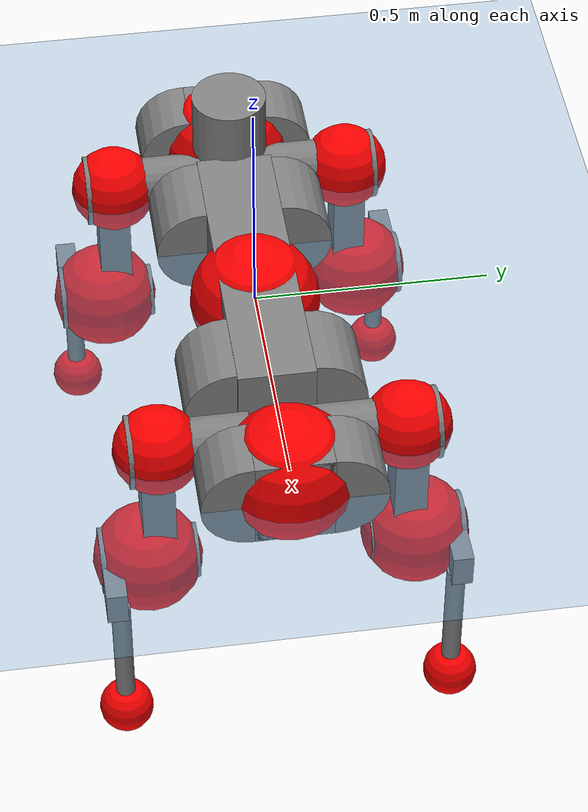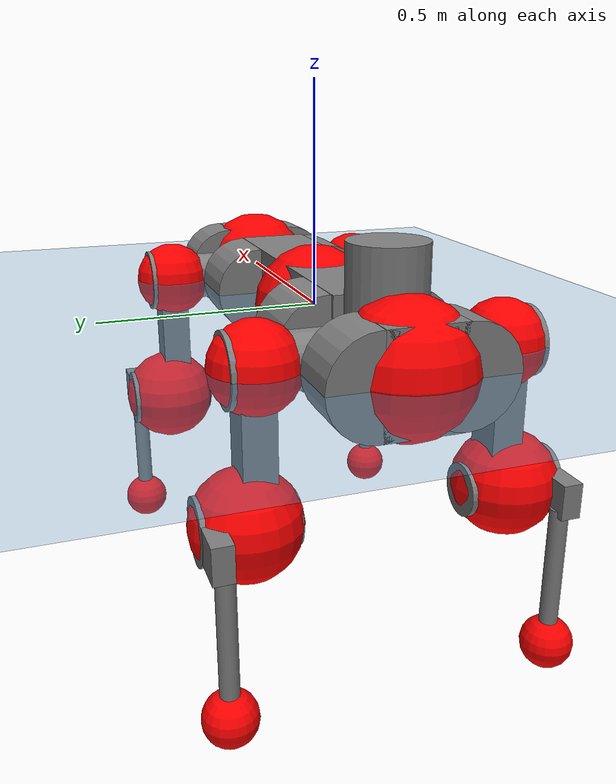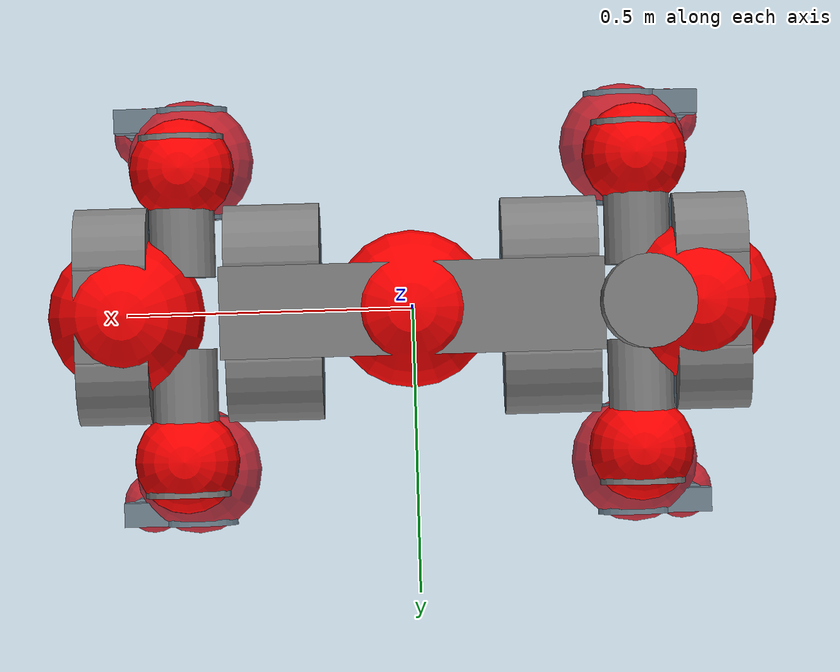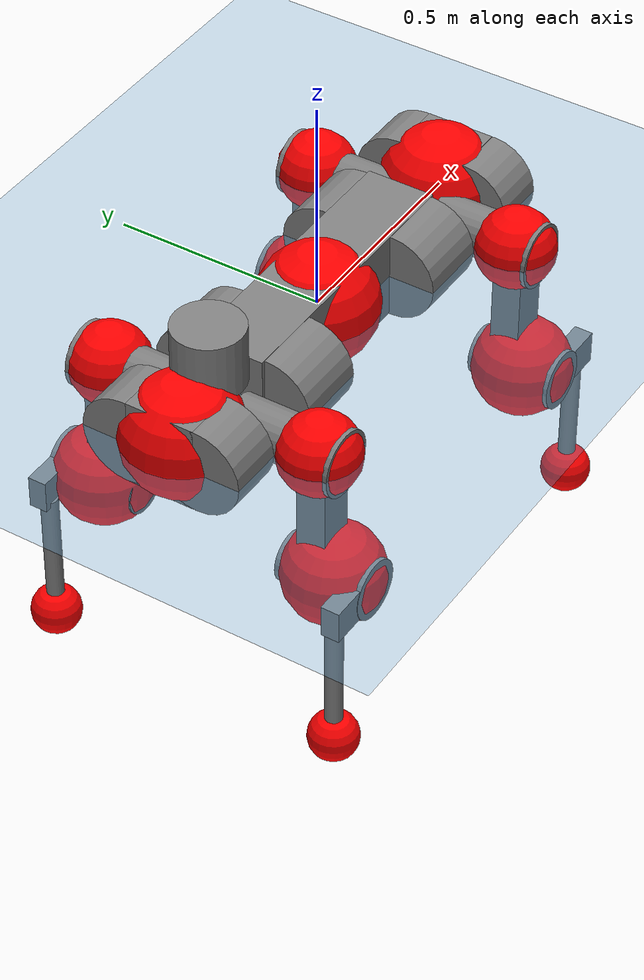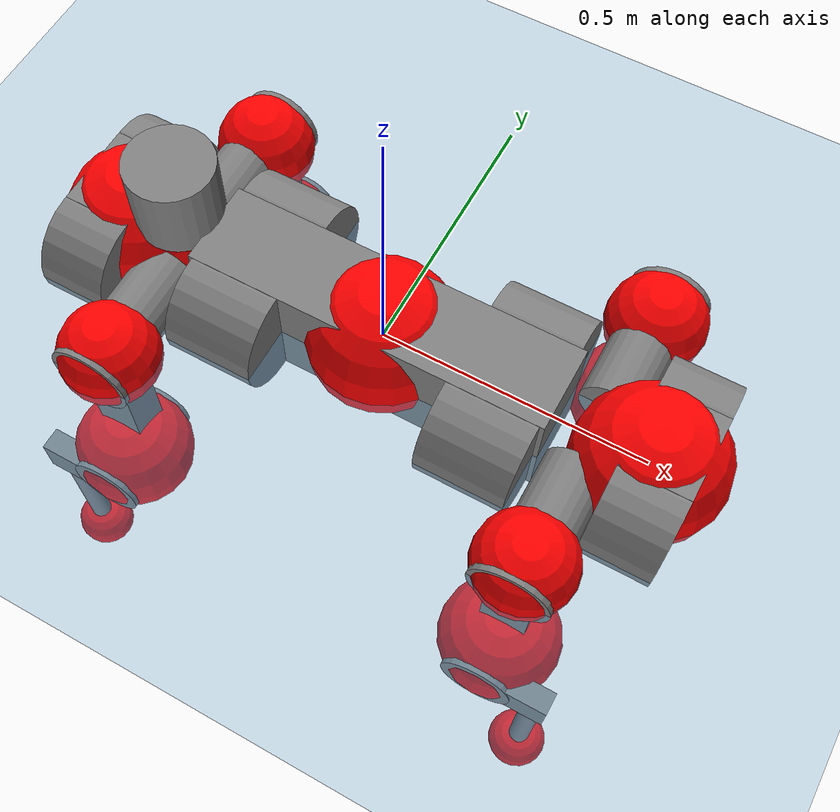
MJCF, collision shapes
<mujoco model="anymal_c">
  <compiler angle="radian" assetdir="assets" balanceinertia="true" inertiafromgeom="false"/>

  <option timestep="0.005" density="1.2" viscosity="2e-05"/>

  <size nkey="1"/>

  <visual>
    <quality shadowsize="8192"/>
    <map shadowclip="0.5"/>
  </visual>

  <default>
    <default class="/">
      <material specular="0" shininess="0.25"/>
      <geom contype="0" conaffinity="0" group="1" solref="-1000 -80"/>
      <site size="0.01 0.005 0.005" group="5"/>
      <general forcelimited="true" forcerange="-80 80" biastype="affine" gainprm="80" biasprm="0 -80 -2"/>
      <default class="anymal_c">
        <joint armature="0.01" damping="0.01" frictionloss="0.1"/>
        <default class="visual">
          <geom type="mesh" group="2"/>
          <default class="visual_zflip"/>
        </default>
        <default class="collision">
          <geom type="cylinder" group="3"/>
          <default class="foot">
            <geom size="0.03 0 0" type="sphere" condim="6" priority="1" friction="0.8 0.02 0.01" solimp="0.015 1 0.03"/>
          </default>
        </default>
      </default>
      <default class="reward_collision_sphere">
        <geom group="5" rgba="1 0 0 1"/>
      </default>
    </default>
  </default>

  <asset>
    <texture type="skybox" colorspace="auto" name="//unnamed_texture_0" builtin="gradient" rgb1="0.95 0.95 0.95" rgb2="0.95 0.95 0.95" width="100" height="600"/>
    <texture type="2d" colorspace="auto" name="texplane" builtin="checker" rgb1="0.345 0.575 0.748" rgb2="0.345 0.575 0.748" markrgb="1 1 1" width="512" height="512"/>
    <texture type="2d" colorspace="linear" name="base" file="base.png"/>
    <texture type="2d" colorspace="linear" name="top_shell" file="top_shell.png"/>
    <texture type="2d" colorspace="linear" name="bottom_shell" file="bottom_shell.png"/>
    <texture type="2d" colorspace="linear" name="remote" file="remote.png"/>
    <texture type="2d" colorspace="linear" name="hatch" file="hatch.png"/>
    <texture type="2d" colorspace="linear" name="handle" file="handle.png"/>
    <texture type="2d" colorspace="linear" name="face" file="face.png"/>
    <texture type="2d" colorspace="linear" name="battery" file="battery.png"/>
    <texture type="2d" colorspace="linear" name="lidar_cage" file="lidar_cage.png"/>
    <texture type="2d" colorspace="linear" name="depth_camera" file="depth_camera.png"/>
    <texture type="2d" colorspace="linear" name="wide_angle_camera" file="wide_angle_camera.png"/>
    <texture type="2d" colorspace="linear" name="lidar" file="lidar.png"/>
    <texture type="2d" colorspace="linear" name="drive" file="drive.png"/>
    <texture type="2d" colorspace="linear" name="hip_l" file="hip_l.png"/>
    <texture type="2d" colorspace="linear" name="shank_l" file="shank_l.png"/>
    <texture type="2d" colorspace="linear" name="foot" file="foot.png"/>
    <texture type="2d" colorspace="linear" name="thigh" file="thigh.png"/>
    <texture type="2d" colorspace="linear" name="shank_r" file="shank_r.png"/>
    <texture type="2d" colorspace="linear" name="hip_r" file="hip_r.png"/>
    <material name="MatPlane" class="/" texture="texplane" texuniform="true" texrepeat="2 2" specular="0.9" shininess="0.5"/>
    <material name="black_plastic" class="/" rgba="0.007 0.007 0.007 1"/>
    <material name="green" class="/" rgba="0.052 0.178 0.033 1"/>
    <material name="red" class="/" rgba="0.178 0.006 0.005 1"/>
    <material name="yellow" class="/" rgba="0.178 0.119 0.006 1"/>
    <material name="lwl" class="/" rgba="0.8 0.8 0.8 1"/>
    <material name="base" class="/" texture="base"/>
    <material name="top_shell" class="/" texture="top_shell"/>
    <material name="bottom_shell" class="/" texture="bottom_shell"/>
    <material name="hip_l" class="/" texture="hip_l"/>
    <material name="thigh" class="/" texture="thigh"/>
    <material name="shank_l" class="/" texture="shank_l"/>
    <material name="foot" class="/" texture="foot"/>
    <material name="hip_r" class="/" texture="hip_r"/>
    <material name="shank" class="/" texture="shank_r"/>
    <material name="hatch" class="/" texture="hatch"/>
    <material name="remote" class="/" texture="remote"/>
    <material name="handle" class="/" texture="handle"/>
    <material name="face" class="/" texture="face"/>
    <material name="depth_camera" class="/" texture="depth_camera"/>
    <material name="wide_angle_camera" class="/" texture="wide_angle_camera"/>
    <material name="battery" class="/" texture="battery"/>
    <material name="lidar_cage" class="/" texture="lidar_cage"/>
    <material name="lidar" class="/" texture="lidar"/>
    <material name="drive" class="/" texture="drive"/>
    <mesh name="base_0" class="/" file="base_0.obj"/>
    <mesh name="base_1" class="/" file="base_1.obj"/>
    <mesh name="base_2" class="/" file="base_2.obj"/>
    <mesh name="base_3" class="/" file="base_3.obj"/>
    <mesh name="base_4" class="/" file="base_4.obj"/>
    <mesh name="base_5" class="/" file="base_5.obj"/>
    <mesh name="top_shell" class="/" file="top_shell.obj"/>
    <mesh name="bottom_shell" class="/" file="bottom_shell.obj"/>
    <mesh name="remote" class="/" file="remote.obj"/>
    <mesh name="handle" class="/" file="handle.obj"/>
    <mesh name="face" class="/" file="face.obj"/>
    <mesh name="wide_angle_camera" class="/" file="wide_angle_camera.obj"/>
    <mesh name="depth_camera" class="/" file="depth_camera.obj"/>
    <mesh name="battery" class="/" file="battery.obj"/>
    <mesh name="lidar_cage" class="/" file="lidar_cage.obj"/>
    <mesh name="lidar" class="/" file="lidar.obj"/>
    <mesh name="drive" class="/" file="drive.obj"/>
    <mesh name="hip_l" class="/" file="hip_l.obj"/>
    <mesh name="thigh" class="/" file="thigh.obj"/>
    <mesh name="shank_l" class="/" file="shank_l.obj"/>
    <mesh name="foot" class="/" file="foot.obj"/>
    <mesh name="hip_r" class="/" file="hip_r.obj"/>
    <mesh name="hatch" class="/" file="hatch.obj"/>
    <mesh name="shank_r" class="/" file="shank_r.obj"/>
  </asset>

  <worldbody>
    <geom name="floor" class="/" size="100 100 0.125" type="plane" group="0" material="MatPlane"/>
    <light name="toplight_shadow" class="/" pos="0 0 5" dir="0.0990148 0.0990148 -0.990148" type="directional" ambient="0.04 0.04 0.04" diffuse="0.55 0.55 0.55" specular="0.12 0.12 0.12"/>
    <light name="toplight_fill" class="/" pos="0 0 5" dir="0.0990148 0.0990148 -0.990148" type="directional" castshadow="false" ambient="0.04 0.04 0.04" diffuse="0.3 0.3 0.3" specular="0.08 0.08 0.08"/>
    <body name="trunk" childclass="anymal_c" pos="0.000468863 6.55231e-05 0.000632384" quat="1 1.17521e-05 8.30463e-07 -5.67231e-06">
      <inertial pos="0.00507137 0.000667156 0.0524449" quat="0.488908 0.515195 0.50084 0.494675" mass="29.5986" diaginertia="1.08508 1.6708 0.378401"/>
      <joint name="//unnamed_joint_0" type="free" armature="0" damping="0" frictionloss="0"/>
      <geom name="//unnamed_geom_1" class="visual" material="green" mesh="base_0"/>
      <geom name="//unnamed_geom_2" class="visual" material="yellow" mesh="base_1"/>
      <geom name="//unnamed_geom_3" class="visual" material="red" mesh="base_2"/>
      <geom name="//unnamed_geom_4" class="visual" material="black_plastic" mesh="base_3"/>
      <geom name="//unnamed_geom_5" class="visual" material="lwl" mesh="base_4"/>
      <geom name="//unnamed_geom_6" class="visual" material="base" mesh="base_5"/>
      <geom name="trunk_1" class="collision" size="0.335112 0.0808892 0.104" type="box"/>
      <geom name="trunk_2" class="collision" size="0.104 0.0837781" pos="0.242706 0.0864056 0" quat="0.707107 0 0.707107 0"/>
      <geom name="trunk_3" class="collision" size="0.104 0.0837781" pos="-0.242706 0.0864056 0" quat="0.707107 0 0.707107 0"/>
      <geom name="trunk_4" class="collision" size="0.104 0.0837781" pos="0.242706 -0.0864056 0" quat="0.707107 0 0.707107 0"/>
      <geom name="trunk_5" class="collision" size="0.104 0.0837781" pos="-0.242706 -0.0864056 0" quat="0.707107 0 0.707107 0"/>
      <geom name="//unnamed_geom_12" class="visual" material="top_shell" mesh="top_shell"/>
      <geom name="//unnamed_geom_13" class="visual" material="bottom_shell" mesh="bottom_shell"/>
      <geom name="//unnamed_geom_14" class="visual" material="remote" mesh="remote"/>
      <geom name="//unnamed_geom_15" class="visual" material="handle" mesh="handle"/>
      <geom name="//unnamed_geom_16" class="visual" pos="0.462537 0 0" quat="1 0 0 0" material="face" mesh="face"/>
      <geom name="trunk_6" class="collision" size="0.0635558 0.0808892 0.104" pos="0.523911 0 0" type="box"/>
      <geom name="//unnamed_geom_18" class="collision" size="0.104 0.0635558" pos="0.523911 0.0864056 0" quat="0.707107 0 0.707107 0"/>
      <geom name="//unnamed_geom_19" class="collision" size="0.104 0.0635558" pos="0.523911 -0.0864056 0" quat="0.707107 0 0.707107 0"/>
      <geom name="//unnamed_geom_20" class="visual" pos="0.515152 0 -0.0326035" quat="0.965926 0 0.258819 0" material="depth_camera" mesh="depth_camera"/>
      <geom name="//unnamed_geom_21" class="visual" pos="0.572453 0 0.0167128" material="wide_angle_camera" mesh="wide_angle_camera"/>
      <geom name="//unnamed_geom_22" class="visual_zflip" pos="-0.462537 0 0" quat="0 0 0 1" material="face" mesh="face"/>
      <geom name="trunk_7" class="collision" size="0.0635558 0.0808892 0.104" pos="-0.523911 0 0" quat="0 0 0 1" type="box"/>
      <geom name="//unnamed_geom_24" class="collision" size="0.104 0.0635558" pos="-0.523911 -0.0864056 0" quat="0 -0.707107 0 0.707107"/>
      <geom name="//unnamed_geom_25" class="collision" size="0.104 0.0635558" pos="-0.523911 0.0864056 0" quat="0 -0.707107 0 0.707107"/>
      <geom name="//unnamed_geom_26" class="visual" pos="-0.515152 0 -0.0326035" quat="0 -0.258819 0 0.965926" material="depth_camera" mesh="depth_camera"/>
      <geom name="//unnamed_geom_27" class="visual_zflip" pos="-0.572453 0 0.0167128" quat="0 0 0 1" material="wide_angle_camera" mesh="wide_angle_camera"/>
      <geom name="//unnamed_geom_28" class="visual" material="battery" mesh="battery"/>
      <geom name="//unnamed_geom_29" class="visual" pos="0 0.0959343 0.032428" quat="0.683013 -0.183013 0.183013 0.683013" material="depth_camera" mesh="depth_camera"/>
      <geom name="//unnamed_geom_30" class="visual" pos="0 -0.0959343 0.032428" quat="0.683013 0.183013 0.183013 -0.683013" material="depth_camera" mesh="depth_camera"/>
      <geom name="//unnamed_geom_31" class="visual" pos="-0.406185 0 0.0820569" quat="1 0 0 0" material="lidar_cage" mesh="lidar_cage"/>
      <geom name="trunk_8" class="collision" size="0.0808892 0.0693336" pos="-0.406185 0 0.149042"/>
      <geom name="//unnamed_geom_33" class="visual" pos="-0.406185 4.65452e-05 0.158755" quat="0.707107 0 0 -0.707107" material="lidar" mesh="lidar"/>
      <geom name="//unnamed_geom_34" class="visual" pos="0.334656 0.128332 2.03457e-09" quat="0.258819 0.965926 0 0" material="drive" mesh="drive"/>
      <geom name="//unnamed_geom_35" class="visual" pos="0.334656 -0.128332 -2.03457e-09" quat="0.258819 -0.965926 0 0" material="drive" mesh="drive"/>
      <geom name="//unnamed_geom_36" class="visual" pos="-0.334656 0.128332 -2.03457e-09" quat="0 0 0.965926 -0.258819" material="drive" mesh="drive"/>
      <geom name="//unnamed_geom_37" class="visual" pos="-0.334656 -0.128332 2.03457e-09" quat="0 0 -0.965926 -0.258819" material="drive" mesh="drive"/>
      <geom name="//unnamed_geom_38" class="visual" pos="0.129443 0 0.0814987" quat="1 0 0 0" material="hatch" mesh="hatch"/>
      <geom name="//unnamed_geom_39" class="reward_collision_sphere" size="0.138667"/>
      <geom name="//unnamed_geom_40" class="reward_collision_sphere" size="0.138667" pos="0.502151 0 0"/>
      <geom name="//unnamed_geom_41" class="reward_collision_sphere" size="0.138667" pos="-0.502151 0 0"/>
      <site name="imu" pos="0.278545 0.0188557 0.0519352" size="0.0115556"/>
      <camera name="track" pos="0 -2.46873 0" quat="0.707107 0.707107 0 0" mode="trackcom"/>
      <camera name="ego_camera" pos="0.502151 0 -0.0446568" quat="-0.5 -0.5 0.5 0.5"/>
      <body name="LF_HIP" pos="0.335893 0.124827 -0.0017133" quat="0.258908 0.965902 -8.24364e-05 0.00011771">
        <inertial pos="0.0618087 -0.0188424 -0.0070194" quat="-0.129217 0.706576 -0.135043 0.682507" mass="4.33029" diaginertia="0.0101489 0.0144396 0.00563256"/>
        <joint name="LF_HAA" pos="0 0 0" axis="0.999997 -0.000220212 -0.0022507" range="-0.796528 0.52839" armature="0.0116175" damping="0.00845863" frictionloss="0.12094"/>
        <geom name="//unnamed_geom_42" class="visual" pos="0 0.000119685 -1.96581e-05" quat="0.258819 -0.965926 0 0" material="hip_l" mesh="hip_l"/>
        <geom name="//unnamed_geom_43" class="visual" pos="0.0668419 -0.0825112 -0.0467655" quat="0.183013 -0.683013 0.683013 0.183013" material="drive" mesh="drive"/>
        <geom name="//unnamed_geom_44" class="collision" size="0.057778 0.0808892" pos="0.0668419 -0.0147628 -0.00770888" quat="-0.353553 -0.612372 0.612372 -0.353553"/>
        <body name="LF_THIGH" pos="0.0668825 -0.0932144 -0.0486582" quat="0.18326 -0.683005 0.682931 0.183097">
          <inertial pos="0.0350431 0.00152905 -0.27265" quat="0.993738 -0.00611611 -0.0752401 0.0823771" mass="4.73814" diaginertia="0.0526371 0.0857774 0.00698995"/>
          <joint name="LF_HFE" pos="0 0 0" axis="0.999999 -0.0015144 2.79934e-05" stiffness="0.00980033" range="-3.09927 3.09706" armature="0.0112461" damping="0.0235297" frictionloss="0.130629"/>
          <geom name="//unnamed_geom_45" class="visual" pos="-0.00235717 -3.71434e-06 0" quat="0.707107 0 0 -0.707107" material="thigh" mesh="thigh"/>
          <geom name="//unnamed_geom_46" class="collision" size="0.0751114 0.0462224" pos="0.0446357 0 0" quat="0.5 0.5 -0.5 -0.5"/>
          <geom name="//unnamed_geom_47" class="collision" size="0.0433335 0.0346668 0.163297" pos="0.0334768 0 -0.157766" quat="0.707107 0 0 -0.707107" type="box"/>
          <geom name="//unnamed_geom_48" class="visual" pos="0.111924 0 -0.31818" quat="1 0 0 0" material="drive" mesh="drive"/>
          <geom name="//unnamed_geom_49" class="collision" size="0.057778 0.0808892" pos="0.0338115 0 -0.31818" quat="0.707107 0 0.707107 0"/>
          <geom name="//unnamed_geom_50" class="reward_collision_sphere" size="0.0924448" pos="0.0278973 0 0"/>
          <body name="LF_SHANK" pos="0.10906 0.00201954 -0.320991" quat="1 0.000534102 0.000643112 0.000521106">
            <inertial pos="0.00722521 -0.075844 -0.0869066" quat="0.993079 -0.114629 0.000473762 -0.0255889" mass="0.887286" diaginertia="0.0174402 0.0254634 0.00199435"/>
            <joint name="LF_KFE" pos="0 0 0" axis="0.999997 -0.00199644 -0.00153508" range="-3.08058 3.12241" armature="0.0108697" damping="0.00768362" frictionloss="0.11395"/>
            <geom name="//unnamed_geom_51" class="visual" pos="-0.00076862 -0.00409832 0" quat="0.707107 0 0 -0.707107" material="shank_l" mesh="shank_l"/>
            <geom name="LF_kfe_act" class="collision" size="0.0693336 0.0231112" pos="0.0223178 0 0" quat="0.5 0.5 -0.5 -0.5"/>
            <geom name="//unnamed_geom_53" class="collision" size="0.0664435 0.0390001 0.0219556" pos="0.0223178 -0.0709748 0" quat="0.5 0.5 -0.5 -0.5" type="box"/>
            <geom name="//unnamed_geom_54" class="visual" pos="0.0145626 -0.109883 -0.377317" quat="0.382683 0 0 -0.92388" material="foot" mesh="foot"/>
            <geom name="LF_calf" class="collision" size="0.0202223 0.163225" pos="0.0145624 -0.108562 -0.188658" quat="0.707107 0 0 -0.707107"/>
            <geom name="LF_foot" class="foot" size="0.0306792" pos="0.0145624 -0.108562 -0.352197" quat="0.707107 0 0 -0.707107"/>
            <geom name="//unnamed_geom_57" class="reward_collision_sphere" size="0.115556" pos="-0.0557946 0 0"/>
            <geom name="//unnamed_geom_58" class="reward_collision_sphere" size="0.057778" pos="0.0145624 -0.108562 -0.352197"/>
            <site name="LF_foot" class="foot" pos="0.0145624 -0.108562 -0.352197" quat="0.707107 0 0 -0.707107" size="0.0115556"/>
          </body>
        </body>
      </body>
      <body name="RF_HIP" pos="0.334532 -0.129617 -0.00269524" quat="0.259073 -0.965858 -0.000242 0.000142869">
        <inertial pos="0.0607514 0.0217474 -0.00683816" quat="0.135341 0.679008 0.128051 0.710095" mass="4.3837" diaginertia="0.00985872 0.0148738 0.00571547"/>
        <joint name="RF_HAA" pos="0 0 0" axis="0.999982 0.00589713 0.00132468" range="-0.490654 0.734999" armature="0.013044" damping="0.0249991" frictionloss="0.130718"/>
        <geom name="//unnamed_geom_59" class="visual" pos="0 -0.000119684 -1.9658e-05" quat="0.258819 0.965926 0 0" material="hip_r" mesh="hip_r"/>
        <geom name="//unnamed_geom_60" class="visual" pos="0.0668419 0.0825112 -0.0467655" quat="0.183013 0.683013 0.683013 -0.183013" material="drive" mesh="drive"/>
        <geom name="//unnamed_geom_61" class="collision" size="0.057778 0.0808892" pos="0.0668419 0.0147628 -0.00770888" quat="-0.353553 0.612372 0.612372 0.353553"/>
        <body name="RF_THIGH" pos="0.064803 0.0856996 -0.0448375" quat="0.182787 0.682733 0.683668 -0.181829">
          <inertial pos="0.0323138 0.00345722 -0.273969" quat="0.991888 -0.00562989 -0.0866185 0.0928595" mass="4.73201" diaginertia="0.0521671 0.0850032 0.00696384"/>
          <joint name="RF_HFE" pos="0 0 0" axis="1 0.000582904 0.00057445" range="-3.0945 3.14381" armature="0.012109" damping="0.025034" frictionloss="0.116536"/>
          <geom name="//unnamed_geom_62" class="visual" pos="-0.00235717 -3.71434e-06 0" quat="0.707107 0 0 -0.707107" material="thigh" mesh="thigh"/>
          <geom name="//unnamed_geom_63" class="collision" size="0.0751114 0.0462224" pos="0.0446357 0 0" quat="0.5 0.5 0.5 0.5"/>
          <geom name="//unnamed_geom_64" class="collision" size="0.0433335 0.0346668 0.163297" pos="0.0334768 0 -0.157766" quat="0.707107 0 0 0.707107" type="box"/>
          <geom name="//unnamed_geom_65" class="visual" pos="0.111924 0 -0.31818" quat="1 0 0 0" material="drive" mesh="drive"/>
          <geom name="//unnamed_geom_66" class="collision" size="0.057778 0.0808892" pos="0.0338115 0 -0.31818" quat="0.707107 0 0.707107 0"/>
          <geom name="//unnamed_geom_67" class="reward_collision_sphere" size="0.0924448" pos="0.0278973 0 0"/>
          <body name="RF_SHANK" pos="0.114062 0.00183261 -0.319489" quat="1 0.000331165 0.000242192 0.000359203">
            <inertial pos="0.00885769 0.0754577 -0.0891704" quat="0.993472 0.111512 0.00394318 0.0237457" mass="0.911473" diaginertia="0.0180446 0.0263955 0.00199894"/>
            <joint name="RF_KFE" pos="0 0 0" axis="0.999894 0.00825946 -0.0119648" range="-3.08908 3.12175" armature="0.0103704" damping="0" frictionloss="0.121351"/>
            <geom name="//unnamed_geom_68" class="visual" pos="-0.000768616 0.00409832 0" quat="0.707107 0 0 0.707107" material="shank" mesh="shank_r"/>
            <geom name="RF_kfe_act" class="collision" size="0.0693336 0.0231112" pos="0.0223178 0 0" quat="0.5 0.5 0.5 0.5"/>
            <geom name="//unnamed_geom_70" class="collision" size="0.0664435 0.0390001 0.0219556" pos="0.0223178 0.0709748 0" quat="0.5 0.5 0.5 0.5" type="box"/>
            <geom name="//unnamed_geom_71" class="visual" pos="0.0145622 0.109883 -0.377317" quat="0.382683 0 0 0.92388" material="foot" mesh="foot"/>
            <geom name="RF_calf" class="collision" size="0.0202223 0.163225" pos="0.0145624 0.108562 -0.188658" quat="0.707107 0 0 0.707107"/>
            <geom name="RF_foot" class="foot" size="0.0279717" pos="0.0145624 0.108562 -0.352197" quat="0.707107 0 0 0.707107"/>
            <geom name="//unnamed_geom_74" class="reward_collision_sphere" size="0.115556" pos="-0.0557946 0 0"/>
            <geom name="//unnamed_geom_75" class="reward_collision_sphere" size="0.057778" pos="0.0145624 0.108562 -0.352197"/>
            <site name="RF_foot" class="foot" pos="0.0145624 0.108562 -0.352197" quat="0.707107 0 0 0.707107" size="0.0115556"/>
          </body>
        </body>
      </body>
      <body name="LH_HIP" pos="-0.331848 0.128405 0.00430763" quat="-0.000746389 0.000148267 0.966268 -0.257538">
        <inertial pos="0.0625239 0.0194304 -0.00744548" quat="0.122809 0.682862 0.128284 0.708633" mass="4.56585" diaginertia="0.0104451 0.0145006 0.00593095"/>
        <joint name="LH_HAA" pos="0 0 0" axis="0.999946 -0.00596018 0.00855371" range="-0.449959 0.672817" armature="0.011788" damping="0.00848764" frictionloss="0.127936"/>
        <geom name="//unnamed_geom_76" class="visual" pos="0 -0.000119684 -1.9658e-05" quat="-0.258819 -0.965926 0 0" material="hip_r" mesh="hip_r"/>
        <geom name="//unnamed_geom_77" class="visual" pos="0.0668419 0.0825112 -0.0467655" quat="0.183013 0.683013 0.683013 -0.183013" material="drive" mesh="drive"/>
        <geom name="//unnamed_geom_78" class="collision" size="0.057778 0.0808892" pos="0.0668419 0.0147628 -0.00770888" quat="-0.353553 0.612372 0.612372 0.353553"/>
        <body name="LH_THIGH" pos="0.0652652 0.0899574 -0.0437291" quat="0.181714 0.682916 0.683562 -0.182616">
          <inertial pos="0.0336947 -0.00121485 -0.271709" quat="0.992194 -0.000221053 -0.0870968 0.0892476" mass="4.66266" diaginertia="0.0522989 0.0911295 0.00742938"/>
          <joint name="LH_HFE" pos="0 0 0" axis="1 -0.000719369 -0.000465823" range="-3.13934 3.16693" armature="0.0101891" damping="0.0115319" frictionloss="0.111316"/>
          <geom name="//unnamed_geom_79" class="visual" pos="-0.00235717 -3.71434e-06 0" quat="0.707107 0 0 -0.707107" material="thigh" mesh="thigh"/>
          <geom name="//unnamed_geom_80" class="collision" size="0.0751114 0.0462224" pos="0.0446357 0 0" quat="0.5 0.5 -0.5 -0.5"/>
          <geom name="//unnamed_geom_81" class="collision" size="0.0433335 0.0346668 0.163297" pos="0.0334768 0 -0.157766" quat="0.707107 0 0 -0.707107" type="box"/>
          <geom name="//unnamed_geom_82" class="visual" pos="0.111924 0 -0.31818" quat="1 0 0 0" material="drive" mesh="drive"/>
          <geom name="//unnamed_geom_83" class="collision" size="0.057778 0.0808892" pos="0.0338115 0 -0.31818" quat="0.707107 0 0.707107 0"/>
          <geom name="//unnamed_geom_84" class="reward_collision_sphere" size="0.0924448" pos="0.0278973 0 0"/>
          <body name="LH_SHANK" pos="0.110666 0.00386249 -0.315079" quat="0.999999 0.000178708 0.00077391 0.00116554">
            <inertial pos="0.00551541 0.0757415 -0.0917563" quat="0.992845 0.11658 -0.000734084 0.0258386" mass="0.940677" diaginertia="0.0176333 0.0269923 0.00198665"/>
            <joint name="LH_KFE" pos="0 0 0" axis="0.999991 -0.000937615 -0.00425381" range="-3.20553 3.13832" armature="0.0110591" damping="0" frictionloss="0.120747"/>
            <geom name="//unnamed_geom_85" class="visual" pos="-0.000768616 0.00409832 0" quat="-0.707107 0 0 -0.707107" material="shank" mesh="shank_r"/>
            <geom name="LH_kfe_act" class="collision" size="0.0693336 0.0231112" pos="0.0223178 0 0" quat="0.5 0.5 -0.5 -0.5"/>
            <geom name="//unnamed_geom_87" class="collision" size="0.0664435 0.0390001 0.0219556" pos="0.0223178 0.0709748 0" quat="0.5 0.5 -0.5 -0.5" type="box"/>
            <geom name="//unnamed_geom_88" class="visual" pos="0.0145622 0.109883 -0.377317" quat="-0.382683 0 0 -0.92388" material="foot" mesh="foot"/>
            <geom name="LH_calf" class="collision" size="0.0202223 0.163225" pos="0.0145624 0.108562 -0.188658" quat="0.707107 0 0 -0.707107"/>
            <geom name="LH_foot" class="foot" size="0.0386782" pos="0.0145624 0.108562 -0.352197" quat="0.707107 0 0 -0.707107"/>
            <geom name="//unnamed_geom_91" class="reward_collision_sphere" size="0.115556" pos="-0.0557946 0 0"/>
            <geom name="//unnamed_geom_92" class="reward_collision_sphere" size="0.057778" pos="0.0145624 0.108562 -0.352197"/>
            <site name="LH_foot" class="foot" pos="0.0145624 0.108562 -0.352197" quat="0.707107 0 0 -0.707107" size="0.0115556"/>
          </body>
        </body>
      </body>
      <body name="RH_HIP" pos="-0.331994 -0.131677 -0.00154382" quat="-0.000307924 0.000192448 -0.965927 -0.258813">
        <inertial pos="0.065778 -0.0198622 -0.0103972" quat="-0.122579 0.703817 -0.130536 0.687442" mass="4.36056" diaginertia="0.0103651 0.0148547 0.00567603"/>
        <joint name="RH_HAA" pos="0 0 0" axis="0.999975 0.00486085 0.0051999" stiffness="0.00848422" range="-0.752779 0.530777" armature="0.0113612" damping="0.00284588" frictionloss="0.121089"/>
        <geom name="//unnamed_geom_93" class="visual" pos="0 0.000119685 -1.96581e-05" quat="-0.258819 0.965926 0 0" material="hip_l" mesh="hip_l"/>
        <geom name="//unnamed_geom_94" class="visual" pos="0.0668419 -0.0825112 -0.0467655" quat="-0.183013 0.683013 -0.683013 -0.183013" material="drive" mesh="drive"/>
        <geom name="//unnamed_geom_95" class="collision" size="0.057778 0.0808892" pos="0.0668419 -0.0147628 -0.00770888" quat="0.353553 0.612372 -0.612372 0.353553"/>
        <body name="RH_THIGH" pos="0.065999 -0.0892816 -0.045934" quat="-0.182842 0.683676 -0.682369 -0.183108">
          <inertial pos="0.0348617 0.00187854 -0.272724" quat="0.992071 -0.011742 -0.0833462 0.0933262" mass="4.62991" diaginertia="0.0516991 0.0834247 0.0071342"/>
          <joint name="RH_HFE" pos="0 0 0" axis="0.999954 -0.00275788 0.00915237" range="-3.09941 3.17736" armature="0.0116803" damping="0.00600251" frictionloss="0.127076"/>
          <geom name="//unnamed_geom_96" class="visual" pos="-0.00235717 -3.71434e-06 0" quat="0.707107 0 0 -0.707107" material="thigh" mesh="thigh"/>
          <geom name="//unnamed_geom_97" class="collision" size="0.0751114 0.0462224" pos="0.0446357 0 0" quat="0.5 0.5 0.5 0.5"/>
          <geom name="//unnamed_geom_98" class="collision" size="0.0433335 0.0346668 0.163297" pos="0.0334768 0 -0.157766" quat="0.707107 0 0 0.707107" type="box"/>
          <geom name="//unnamed_geom_99" class="visual" pos="0.111924 0 -0.31818" quat="1 0 0 0" material="drive" mesh="drive"/>
          <geom name="//unnamed_geom_100" class="collision" size="0.057778 0.0808892" pos="0.0338115 0 -0.31818" quat="0.707107 0 0.707107 0"/>
          <geom name="//unnamed_geom_101" class="reward_collision_sphere" size="0.0924448" pos="0.0278973 0 0"/>
          <body name="RH_SHANK" pos="0.116603 0.00330728 -0.315263" quat="0.999999 0.000457192 0.000158006 -0.00111677">
            <inertial pos="0.00224472 -0.0752412 -0.0926981" quat="0.99362 -0.108927 0.00951262 -0.0276338" mass="0.896632" diaginertia="0.016977 0.0253196 0.0019724"/>
            <joint name="RH_KFE" pos="0 0 0" axis="0.999945 -0.000306896 0.0104955" range="-3.12115 3.09508" armature="0.0126274" damping="0.00975168" frictionloss="0.110453"/>
            <geom name="//unnamed_geom_102" class="visual" pos="-0.00076862 -0.00409832 0" quat="0.707107 0 0 -0.707107" material="shank_l" mesh="shank_l"/>
            <geom name="RH_kfe_act" class="collision" size="0.0693336 0.0231112" pos="0.0223178 0 0" quat="0.5 0.5 0.5 0.5"/>
            <geom name="//unnamed_geom_104" class="collision" size="0.0664435 0.0390001 0.0219556" pos="0.0223178 -0.0709748 0" quat="0.5 0.5 0.5 0.5" type="box"/>
            <geom name="//unnamed_geom_105" class="visual" pos="0.0145626 -0.109883 -0.377317" quat="0.382683 0 0 -0.92388" material="foot" mesh="foot"/>
            <geom name="RH_calf" class="collision" size="0.0202223 0.163225" pos="0.0145624 -0.108562 -0.188658" quat="0.707107 0 0 0.707107"/>
            <geom name="RH_foot" class="foot" size="0.0303776" pos="0.0145624 -0.108562 -0.352197" quat="0.707107 0 0 0.707107"/>
            <geom name="//unnamed_geom_108" class="reward_collision_sphere" size="0.115556" pos="-0.0557946 0 0"/>
            <geom name="//unnamed_geom_109" class="reward_collision_sphere" size="0.057778" pos="0.0145624 -0.108562 -0.352197"/>
            <site name="RH_foot" class="foot" pos="0.0145624 -0.108562 -0.352197" quat="0.707107 0 0 0.707107" size="0.0115556"/>
          </body>
        </body>
      </body>
    </body>
  </worldbody>

  <contact>
    <pair class="/" geom1="floor" geom2="LF_foot" name="//unnamed_contact_0"/>
    <pair class="/" geom1="floor" geom2="RF_foot" name="//unnamed_contact_1"/>
    <pair class="/" geom1="floor" geom2="LH_foot" name="//unnamed_contact_2"/>
    <pair class="/" geom1="floor" geom2="RH_foot" name="//unnamed_contact_3"/>
  </contact>

  <actuator>
    <general name="LF_HAA" class="/" joint="LF_HAA" forcerange="-79.2366 79.2366" gainprm="87.9557" biasprm="0 -87.9557 -2.46794"/>
    <general name="LF_HFE" class="/" joint="LF_HFE" forcerange="-88.5937 88.5937" gainprm="87.9557" biasprm="0 -87.9557 -2.46794"/>
    <general name="LF_KFE" class="/" joint="LF_KFE" forcerange="-84.6072 84.6072" gainprm="87.9557" biasprm="0 -87.9557 -2.46794"/>
    <general name="RF_HAA" class="/" joint="RF_HAA" forcerange="-84.8153 84.8153" gainprm="87.9557" biasprm="0 -87.9557 -2.46794"/>
    <general name="RF_HFE" class="/" joint="RF_HFE" forcerange="-85.0956 85.0956" gainprm="87.9557" biasprm="0 -87.9557 -2.46794"/>
    <general name="RF_KFE" class="/" joint="RF_KFE" forcerange="-96.0528 96.0528" gainprm="87.9557" biasprm="0 -87.9557 -2.46794"/>
    <general name="LH_HAA" class="/" joint="LH_HAA" forcerange="-87.0245 87.0245" gainprm="87.9557" biasprm="0 -87.9557 -2.46794"/>
    <general name="LH_HFE" class="/" joint="LH_HFE" forcerange="-101.28 101.28" gainprm="87.9557" biasprm="0 -87.9557 -2.46794"/>
    <general name="LH_KFE" class="/" joint="LH_KFE" forcerange="-87.3222 87.3222" gainprm="87.9557" biasprm="0 -87.9557 -2.46794"/>
    <general name="RH_HAA" class="/" joint="RH_HAA" forcerange="-102.56 102.56" gainprm="87.9557" biasprm="0 -87.9557 -2.46794"/>
    <general name="RH_HFE" class="/" joint="RH_HFE" forcerange="-88.6842 88.6842" gainprm="87.9557" biasprm="0 -87.9557 -2.46794"/>
    <general name="RH_KFE" class="/" joint="RH_KFE" forcerange="-93.2408 93.2408" gainprm="87.9557" biasprm="0 -87.9557 -2.46794"/>
  </actuator>

  <sensor>
    <gyro site="imu" name="imu_angular_velocity"/>
    <velocimeter site="imu" name="imu_linear_velocity"/>
    <framelinvel objtype="site" objname="LF_foot" name="LF_foot_global_linear_velocity"/>
    <framelinvel objtype="site" objname="RF_foot" name="RF_foot_global_linear_velocity"/>
    <framelinvel objtype="site" objname="LH_foot" name="LH_foot_global_linear_velocity"/>
    <framelinvel objtype="site" objname="RH_foot" name="RH_foot_global_linear_velocity"/>
  </sensor>

  <keyframe>
    <key name="home" qpos="0 0 0.55 1 0 0 0 0 0.4 -0.8 0 -0.4 0.8 0 -0.4 0.8 0 0.4 -0.8"/>
  </keyframe>
</mujoco>
